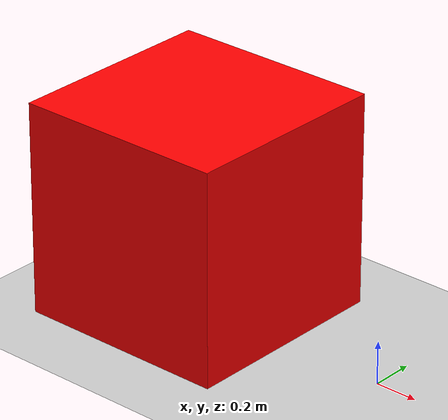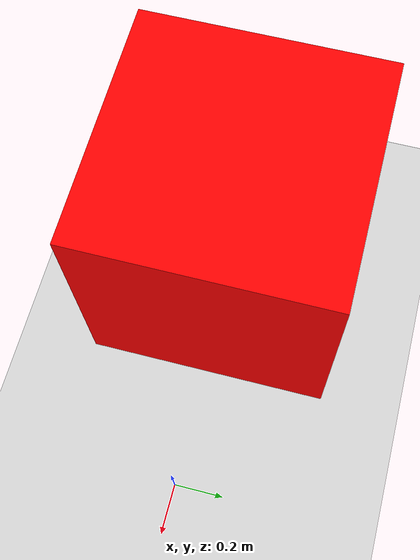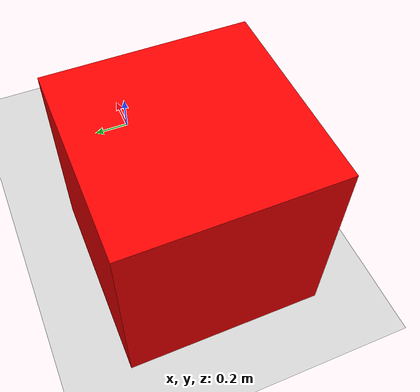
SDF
<sdf version="1.6">
  <world name="empty">

    <physics name="1ms" type="ignored">
      <max_step_size>0.001</max_step_size>
      <real_time_factor>1.0</real_time_factor>
    </physics>

    <plugin filename="gz-sim-physics-system" name="gz::sim::systems::Physics"/>
    <plugin filename="gz-sim-user-commands-system" name="gz::sim::systems::UserCommands"/>
    <plugin filename="gz-sim-scene-broadcaster-system" name="gz::sim::systems::SceneBroadcaster"/>
    <plugin filename="gz-sim-sensors-system" name="gz::sim::systems::Sensors">
      <render_engine>ogre2</render_engine>
    </plugin>
    <plugin filename="gz-sim-contact-system" name="gz::sim::systems::Contact"/>
    <plugin filename="gz-sim-imu-system" name="gz::sim::systems::Imu"/>

    <light type="directional" name="sun">
      <cast_shadows>true</cast_shadows>
      <pose>0 0 10 0 0 0</pose>
      <diffuse>0.8 0.8 0.8 1</diffuse>
      <specular>0.2 0.2 0.2 1</specular>
      <attenuation>
        <range>1000</range>
        <constant>0.9</constant>
        <linear>0.01</linear>
        <quadratic>0.001</quadratic>
      </attenuation>
      <direction>-0.5 0.1 -0.9</direction>
    </light>

    <model name="ground_plane">
      <static>true</static>
      <link name="link">
        <collision name="collision">
          <geometry>
            <plane>
              <normal>0 0 1</normal>
              <size>100 100</size>
            </plane>
          </geometry>
        </collision>
        <visual name="visual">
          <geometry>
            <plane>
              <normal>0 0 1</normal>
              <size>100 100</size>
            </plane>
          </geometry>
          <material>
            <ambient>0.8 0.8 0.8 1</ambient>
            <diffuse>0.8 0.8 0.8 1</diffuse>
            <specular>0.8 0.8 0.8 1</specular>
          </material>
        </visual>
      </link>
    </model>

    <!-- ✅ Square Box to the Left of Robot -->
    <model name="obstacle_box">
      <static>true</static>
      <pose>-1 0 0.5 0 0 0</pose>
      <link name="link">
        <collision name="collision">
          <geometry>
            <box>
              <size>1 1 1</size>
            </box>
          </geometry>
        </collision>
        <visual name="visual">
          <geometry>
            <box>
              <size>1 1 1</size>
            </box>
          </geometry>
          <material>
            <ambient>1 0 0 1</ambient>
            <diffuse>1 0 0 1</diffuse>
          </material>
        </visual>
      </link>
    </model>

  </world>
</sdf>
